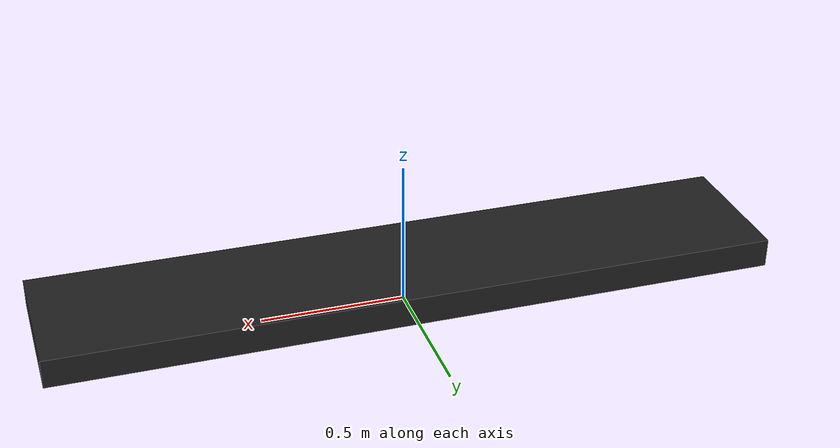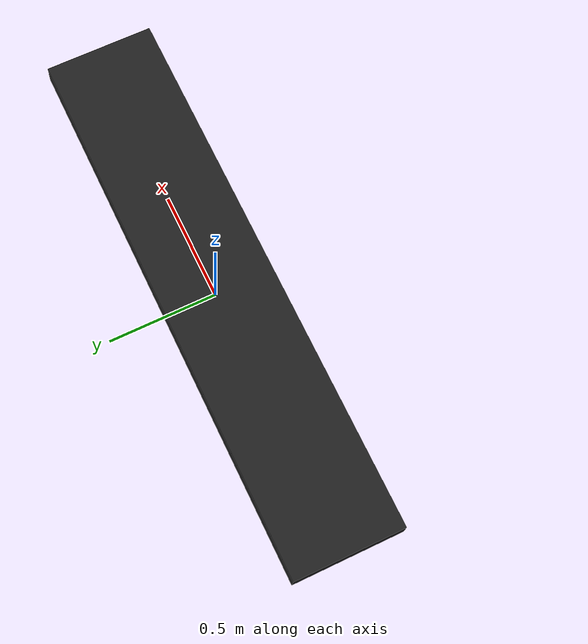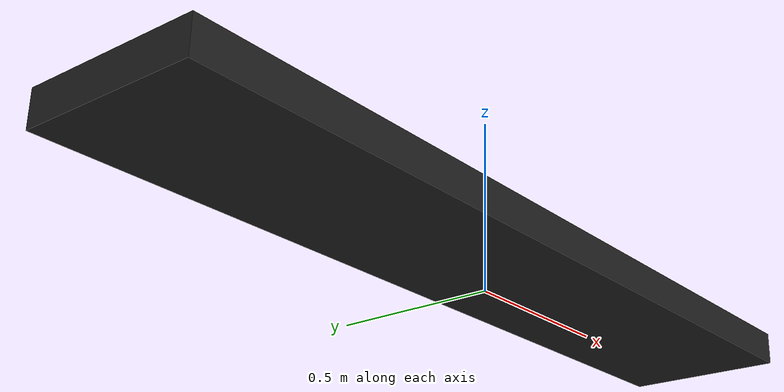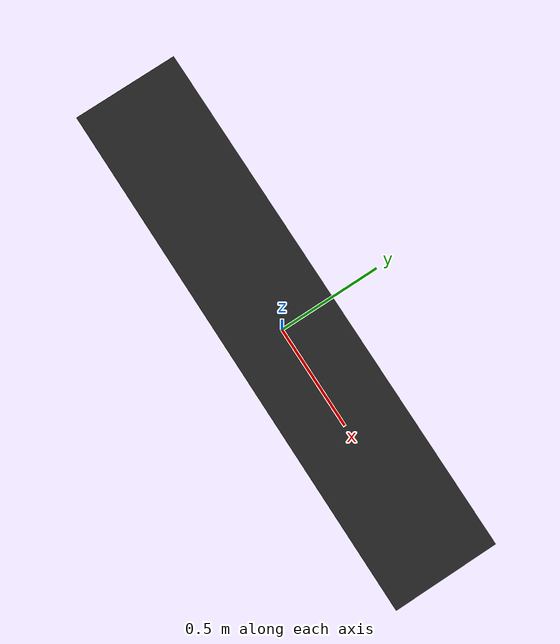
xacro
<?xml version="1.0"?>
<robot name="conveyor_belt">

<!-- conveyor belt is just a long flat box for objects to slide on it -->

<!-- world link -->
<link name="world"/>

<!-- base_link and its fixed joint -->
<joint name="joint_fix" type="fixed">
  <parent link="world"/>
  <child link="base_link"/>
</joint>

<link name="base_link">
  <collision>
    <origin xyz="0 0 0.1" rpy="0 0 0"/>
    <geometry>
      <box size="0.0 0.0 0.0"/>
    </geometry>
  </collision>

  <visual>
    <origin xyz="0 0 0.1" rpy="0 0 0"/>
    <geometry>
      <box size="2.5 0.5 0.1"/>
    </geometry>
  </visual>

  <inertial>
    <origin xyz="0 0 0.1" rpy="0 0 0"/>
    <mass value="1"/>
    <inertia
      ixx="1.0" ixy="0.0" ixz="0.0"
      iyy="1.0" iyz="0.0"
      izz="1.0"/>
  </inertial>
</link>

<gazebo reference="base_link">
  <mu1>0</mu1>
  <mu2>0</mu2>
  <material>Gazebo/FlatBlack</material>
</gazebo>

</robot>
